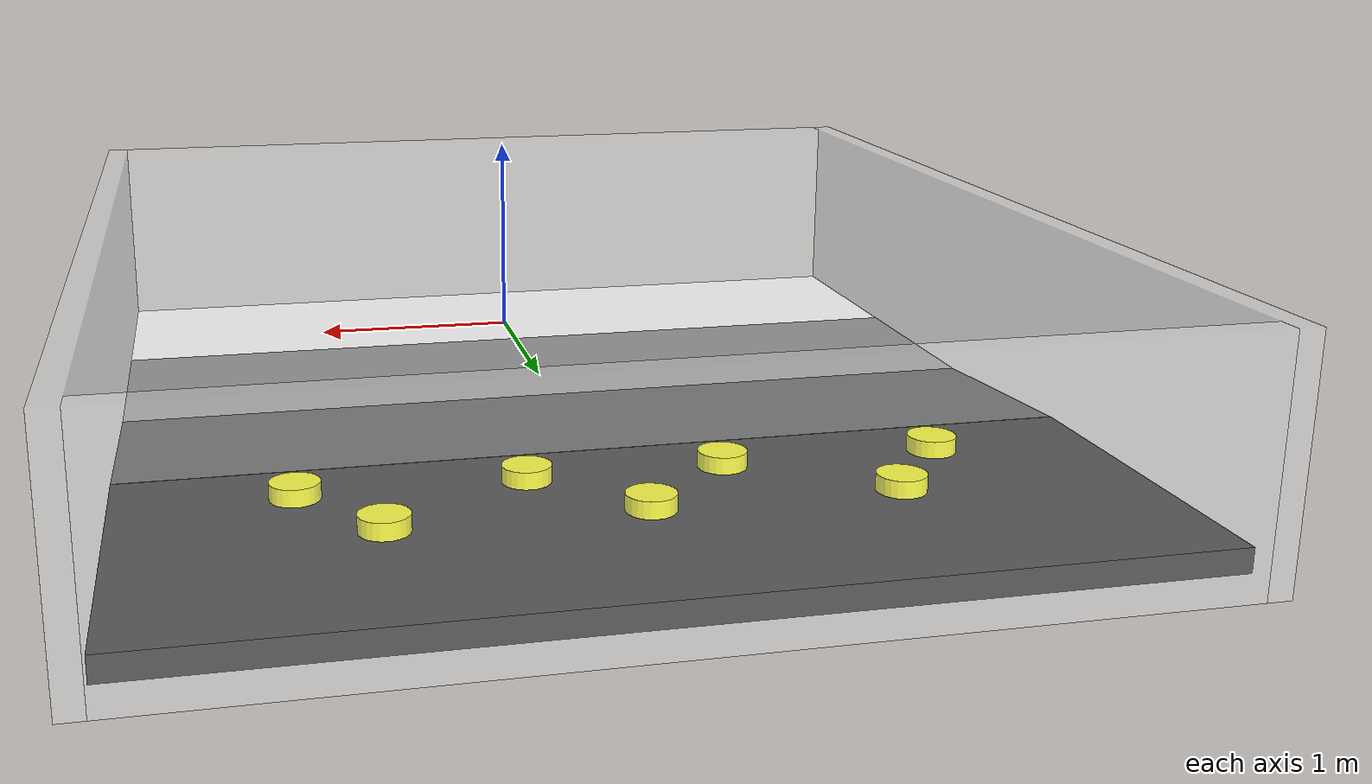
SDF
<?xml version='1.0' encoding='ASCII'?>
<sdf version='1.7'>
	<world name='arena'>

		<physics type="ode">
			<max_step_size>0.003</max_step_size>
			<real_time_factor>5.0</real_time_factor>
		</physics>

		<scene>
			<ambient>1 1 1 1</ambient>
			<background>0.3 0.7 0.9 1</background>
			<shadows>0</shadows>
			<grid>false</grid>
		</scene>

		<plugin name="gz::sim::systems::Physics" filename="gz-sim-physics-system" />
		<plugin name="gz::sim::systems::UserCommands" filename="gz-sim-user-commands-system" />
		<plugin name="gz::sim::systems::SceneBroadcaster" filename="gz-sim-scene-broadcaster-system" />
		<plugin name="gz::sim::systems::Contact" filename="gz-sim-contact-system" />
		<plugin name="gz::sim::systems::Sensors" filename="gz-sim-sensors-system">
        	<render_engine>ogre2</render_engine>
   		</plugin>

		<plugin name="gz::sim::EvolutionHandler" filename="libEvolutionHandlerPlugin"/>

		<include>
			<uri>ground_stl.sdf</uri>
		</include>

		<include>
			<uri>walls.sdf</uri>
		</include>

		<include>
			<uri>object.sdf</uri>
			<name>object1</name>
			<pose>0.4 2.8 0.15 0 0 0</pose>
		</include>

		<include>
			<uri>object.sdf</uri>
			<name>object2</name>
			<pose>-0.4 2.8 0.15 0 0 0</pose>
		</include>

		<include>
			<uri>object.sdf</uri>
			<name>object3</name>
			<pose>1.3 2.8 0.15 0 0 0</pose>
		</include>

		<include>
			<uri>object.sdf</uri>
			<name>object4</name>
			<pose>-1.3 2.8 0.15 0 0 0</pose>
		</include>

		<include>
			<uri>object.sdf</uri>
			<name>object5</name>
			<pose>1 3.2 0.15 0 0 0</pose>
		</include>

		<include>
			<uri>object.sdf</uri>
			<name>object6</name>
			<pose>-1 3.2 0.15 0 0 0</pose>
		</include>

		<include>
			<uri>object.sdf</uri>
			<name>object7</name>
			<pose>0 3.2 0.15 0 0 0</pose>
		</include>

	</world>
</sdf>

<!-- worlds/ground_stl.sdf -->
<sdf version="1.9">
  <model name="ground">
    <static>true</static>

    <!-- Collision mesh globale -->
    <link name="link_ground_collision">
      <pose>0 0 -0.05 0 0 0</pose>
      <collision name="ground_collision">
        <geometry>
          <mesh>
            <uri>ground_plane_arena_3.stl</uri>
            <scale>0.1 0.1 0.1</scale>
          </mesh>
        </geometry>
      </collision>
    </link>

    <!-- Area inferiore -->
    <link name="link_lower_area">
      <pose>0 0 0 0 0 0</pose>
      <visual name="nest_area">
        <pose>0 0 0 0 0 0</pose>
        <geometry>
          <box>
            <size>4.0 1.0 0.1</size>
          </box>
        </geometry>
        <material>
          <diffuse>1 1 1 1</diffuse>
        </material>
      </visual>
      <visual name="cache_area">
        <pose>0 1.0 0 0 0 0</pose>
        <geometry>
          <box>
            <size>4.0 1.0 0.1</size>
          </box>
        </geometry>
        <material>
          <diffuse>0.6 0.6 0.6 1</diffuse>
        </material>
      </visual>
    </link>

    <!-- Rampa -->
    <link name="link_slope">
      <pose relative_to="joint_cache_slope">0 0.5 0 0 0 0</pose>
      <visual name="visual_slope">
        <geometry>
          <box>
            <size>4.0 1.0 0.1</size>
          </box>
        </geometry>
        <material>
          <diffuse>0.3 0.3 0.3 1</diffuse>
        </material>
      </visual>
    </link>

    <!-- Area superiore -->
    <link name="link_source_area">
      <pose relative_to="joint_slope_source">0 0.75 0 0 0 0</pose>
      <visual name="visual_source_area">
        <geometry>
          <box>
            <size>4.0 1.5 0.1</size>
          </box>
        </geometry>
        <material>
          <diffuse>0.1 0.1 0.1 1</diffuse>
        </material>
      </visual>
    </link>

    <!-- Giunti fissi -->
    <joint name="joint_cache_slope" type="fixed">
      <parent>link_lower_area</parent>
      <child>link_slope</child>
      <pose relative_to="link_lower_area">0 1.5 0 0.07 0 0</pose>
      <axis>
        <xyz>1 0 0</xyz>
      </axis>
    </joint>
    <joint name="joint_slope_source" type="fixed">
      <parent>link_slope</parent>
      <child>link_source_area</child>
      <pose relative_to="link_slope">0 0.5 0 -0.07 0 0</pose>
      <axis>
        <xyz>1 0 0</xyz>
      </axis>
    </joint>
  </model>
</sdf>

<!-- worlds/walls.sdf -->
<sdf version="1.9">
	<model name="walls">
		<static>true</static>
		<link name="link_wall_nest">
			<pose>0 -0.55 0.45 0 0 0</pose>
			<visual name="visual_nest_wall">
				<geometry>
					<box>
						<size>4.0 0.1 1</size>
					</box>
				</geometry>
				<material>
					<diffuse>1 1 1 0.3</diffuse>
				</material>
			</visual>
			<collision name="collision_nest_wall">
				<geometry>
					<box>
						<size>4.0 0.1 1</size>
					</box>
				</geometry>
			</collision>
		</link>
		<link name="link_wall_source">
			<pose relative_to="link_wall_nest">0 4.597551000253279 0 0 0 0</pose>
			<visual name="visual_source_wall">
				<geometry>
					<box>
						<size>4.0 0.1 1</size>
					</box>
				</geometry>
				<material>
					<diffuse>1 1 1 0.3</diffuse>
				</material>
			</visual>
			<collision name="collision_source_wall">
				<geometry>
					<box>
						<size>4.0 0.1 1</size>
					</box>
				</geometry>
			</collision>
		</link>
		<link name="link_edge_wall1">
			<pose relative_to="link_wall_nest">2.05 2.2987755001266397 0 0 0 1.5707963267948966</pose>
			<visual name="visual_edge_wall1">
				<geometry>
					<box>
						<size>4.69755100025328 0.1 1</size>
					</box>
				</geometry>
				<material>
					<diffuse>1 1 1 0.3</diffuse>
				</material>
			</visual>
			<collision name="collision_edge_wall1">
				<geometry>
					<box>
						<size>4.69755100025328 0.1 1</size>
					</box>
				</geometry>
			</collision>
		</link>
		<link name="link_edge_wall2">
			<pose relative_to="link_edge_wall1">0 4.1 0 0 0 0</pose>
			<visual name="visual_edge_wall2">
				<geometry>
					<box>
						<size>4.69755100025328 0.1 1</size>
					</box>
				</geometry>
				<material>
					<diffuse>1 1 1 0.3</diffuse>
				</material>
			</visual>
			<collision name="collision_edge_wall2">
				<geometry>
					<box>
						<size>4.19755100025328 0.1 1</size>
					</box>
				</geometry>
			</collision>
		</link>
	</model>
</sdf>

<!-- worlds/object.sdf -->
<sdf version="1.9">

		<model name ="object">

				<plugin filename="libgz-sim-pose-publisher-system.so" name="gz::sim::systems::PosePublisher">
					<publish_link_pose>false</publish_link_pose>
					<publish_model_pose>true</publish_model_pose>
					<publish_nested_model_pose>true</publish_nested_model_pose>
					<use_pose_vector_msg>false</use_pose_vector_msg>
					<publish_visual_pose>false</publish_visual_pose>
					<update_frequency>10</update_frequency>
				</plugin>

			<link name="link_object">

				<inertial>
					<inertia>
					  <ixx>0.1</ixx>
					  <ixy>0</ixy>
					  <ixz>0</ixz>
					  <iyy>0.1</iyy>
					  <iyz>0</iyz>
					  <izz>0.1</izz>
					</inertia>
					<mass>1.0</mass>
				  </inertial>

				<visual name="visual_object">
					<geometry>
						<cylinder>
							<radius>.1</radius>
							<length>0.08</length>
						</cylinder>
					</geometry>
					<material>
						<diffuse>1 1 0 1</diffuse>
					</material>
				</visual>

				<collision name="collision_object">
					<geometry>
						<cylinder>
							<radius>.1</radius>
							<length>0.08</length>
						</cylinder>
					</geometry>

					<surface>
						<friction>
							<ode>
								<mu>0.05</mu>
							</ode>
						</friction>
					</surface>

				</collision>

			</link>

		</model>

	</sdf>
